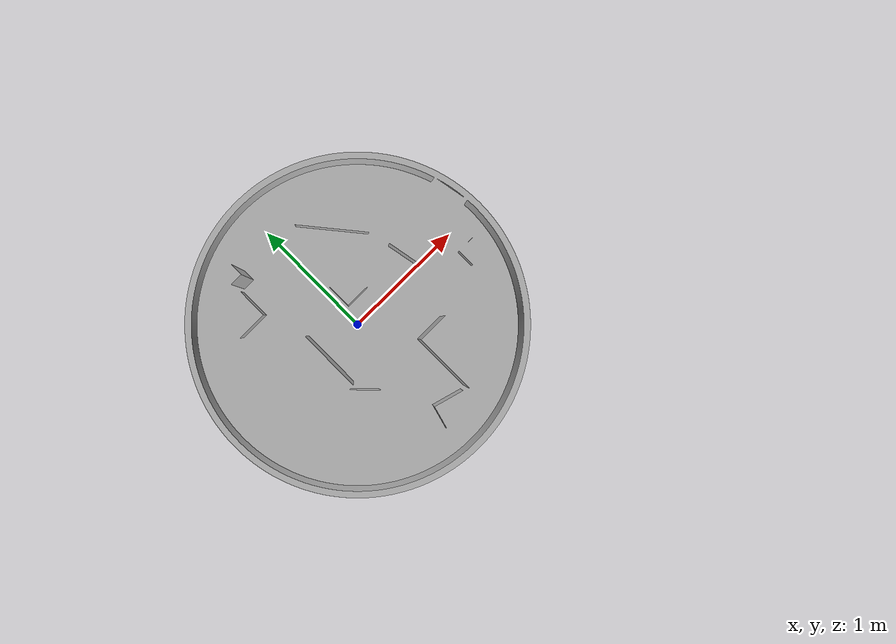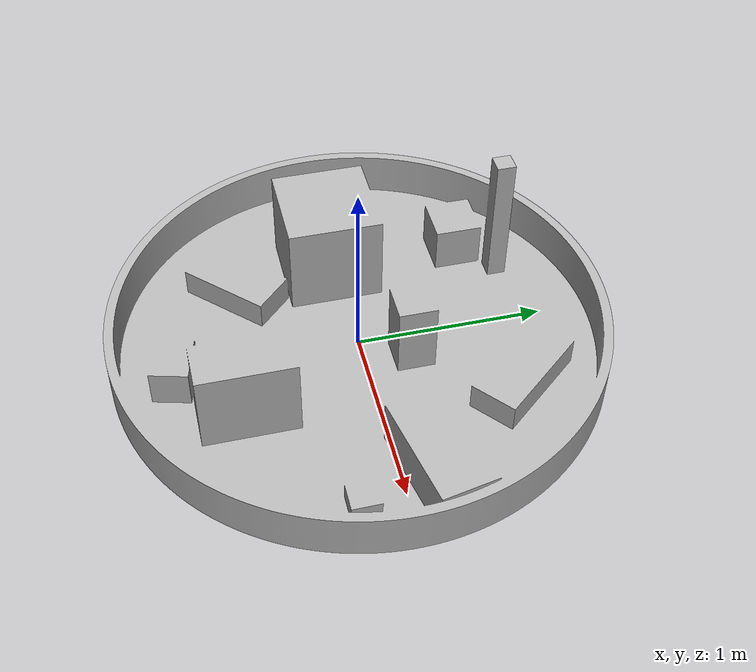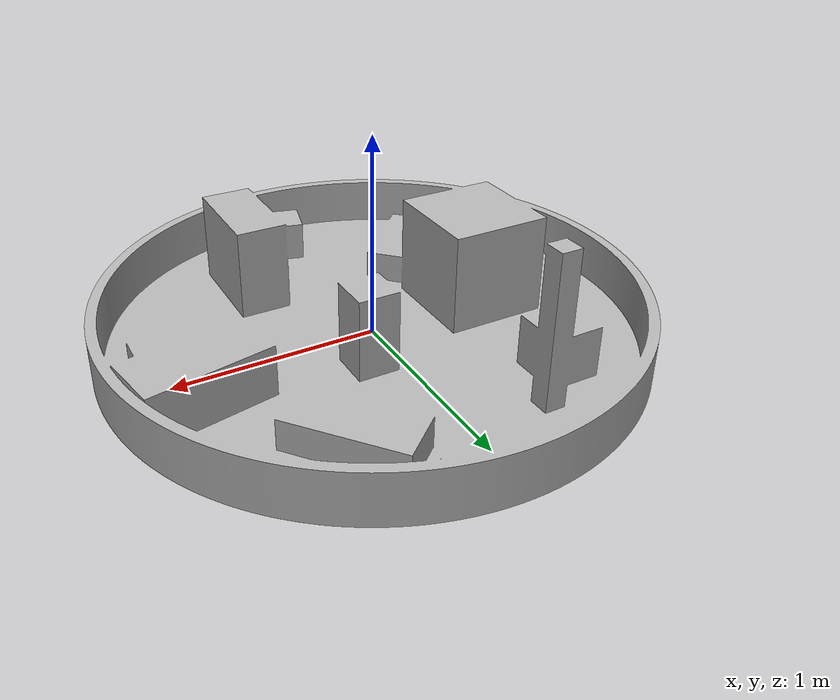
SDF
<?xml version="1.0" ?>
<sdf version="1.6">
 <world name="default">

    <!-- LIGHT -->
    <light name="sun" type="directional">
      <pose>0 0 10 0 0 0</pose>
      <diffuse>1 1 1 1</diffuse>
      <direction>-0.5 0.1 -1</direction>
    </light>

  <model name="obstacle_world">
    <static>true</static>

    <link name="obstacle_world">

      <!-- Visual -->
      <visual name="visual">
        <geometry>
          <mesh>
            <uri>model://obstacle_world/meshes/obstacle_world.obj</uri>
          </mesh>
        </geometry>
      </visual>

      <!-- Collision -->
      <collision name="collision">
        <geometry>
          <mesh>
            <uri>model://obstacle_world/meshes/obstacle_world.obj</uri>
          </mesh>
        </geometry>
      </collision>

    </link>
  </model>

 </world>
</sdf>
